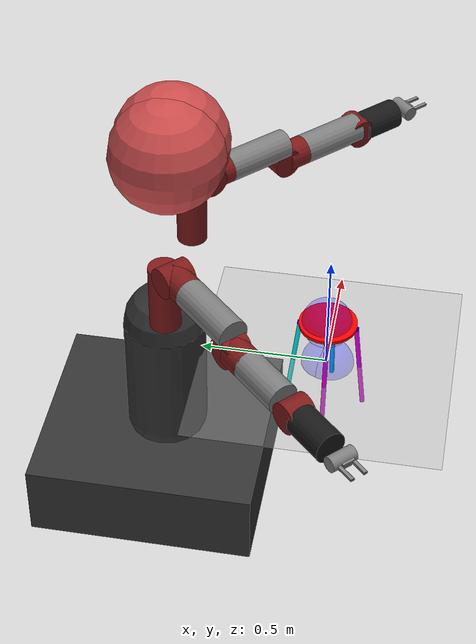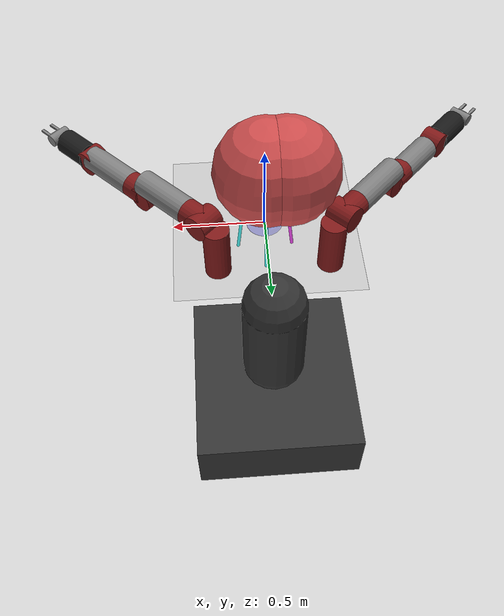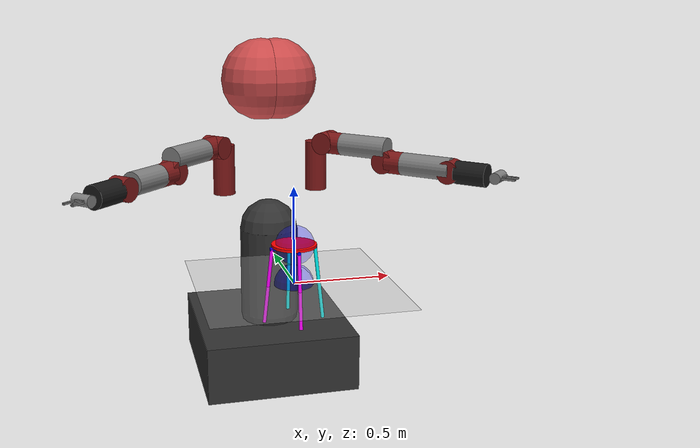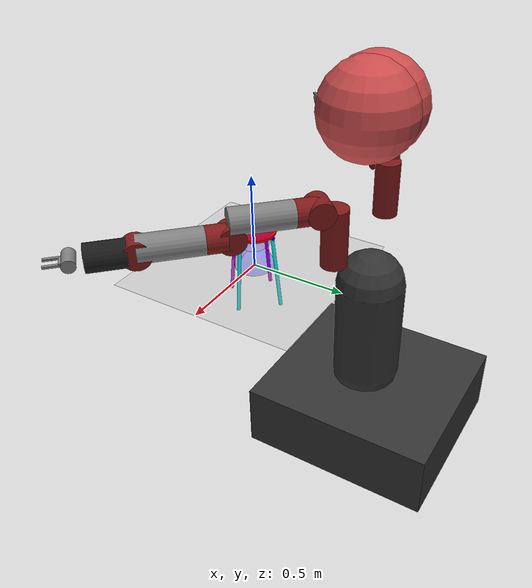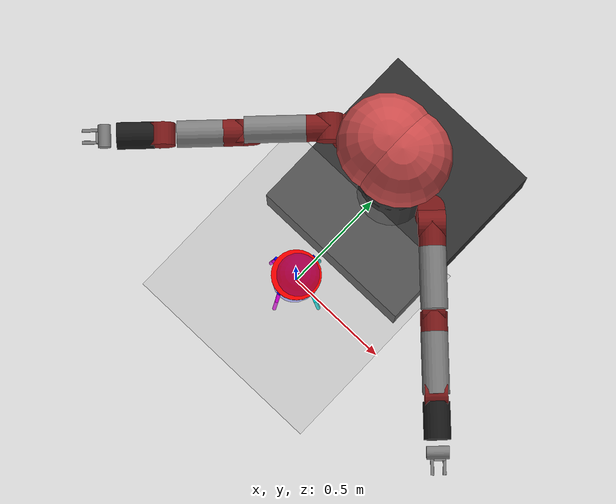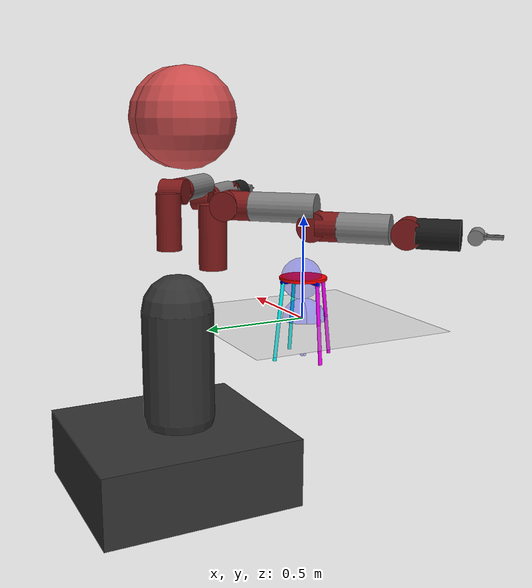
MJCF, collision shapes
<mujoco model="base">
  <compiler angle="radian" meshdir="meshes/" />
  <option cone="elliptic" impratio="20" />
  <size nconmax="5000" njmax="5000" />
  <visual>
      <map znear="0.001" />
  </visual>

  <asset>
  <texture builtin="flat" height="256" rgb1="1 1 1." rgb2=".2 .3 .4" type="skybox" width="256" />
        <texture builtin="checker" height="512" name="texplane" rgb1=".2 .3 .4" rgb2=".1 0.15 0.2" type="2d" width="512" />
        <material name="floorplane" reflectance="0.5" texrepeat="1 1" texture="texplane" texuniform="true" />
    <mesh file="/media/jinwoo/Disk/Research_linux/Workspace/Research/Compound_task/furniture-dev/furniture/env/models/assets/robots/baxter/meshes/torso/base_link.STL" name="base_link" />
    <mesh file="/media/jinwoo/Disk/Research_linux/Workspace/Research/Compound_task/furniture-dev/furniture/env/models/assets/robots/baxter/meshes/torso/base_link_collision.STL" name="base_link_collision" />
    <mesh file="/media/jinwoo/Disk/Research_linux/Workspace/Research/Compound_task/furniture-dev/furniture/env/models/assets/robots/baxter/meshes/base/PEDESTAL.STL" name="PEDESTAL" />
    <mesh file="/media/jinwoo/Disk/Research_linux/Workspace/Research/Compound_task/furniture-dev/furniture/env/models/assets/robots/baxter/meshes/base/pedestal_link_collision.STL" name="pedestal_link_collision" />
    <mesh file="/media/jinwoo/Disk/Research_linux/Workspace/Research/Compound_task/furniture-dev/furniture/env/models/assets/robots/baxter/meshes/head/H0.STL" name="H0" />
    <mesh file="/media/jinwoo/Disk/Research_linux/Workspace/Research/Compound_task/furniture-dev/furniture/env/models/assets/robots/baxter/meshes/head/H1.STL" name="H1" />
    <mesh file="/media/jinwoo/Disk/Research_linux/Workspace/Research/Compound_task/furniture-dev/furniture/env/models/assets/robots/baxter/meshes/upper_shoulder/S0.STL" name="S0" />
    <mesh file="/media/jinwoo/Disk/Research_linux/Workspace/Research/Compound_task/furniture-dev/furniture/env/models/assets/robots/baxter/meshes/lower_shoulder/S1.STL" name="S1" />
    <mesh file="/media/jinwoo/Disk/Research_linux/Workspace/Research/Compound_task/furniture-dev/furniture/env/models/assets/robots/baxter/meshes/upper_elbow/E0.STL" name="E0" />
    <mesh file="/media/jinwoo/Disk/Research_linux/Workspace/Research/Compound_task/furniture-dev/furniture/env/models/assets/robots/baxter/meshes/lower_elbow/E1.STL" name="E1" />
    <mesh file="/media/jinwoo/Disk/Research_linux/Workspace/Research/Compound_task/furniture-dev/furniture/env/models/assets/robots/baxter/meshes/upper_forearm/W0.STL" name="W0" />
    <mesh file="/media/jinwoo/Disk/Research_linux/Workspace/Research/Compound_task/furniture-dev/furniture/env/models/assets/robots/baxter/meshes/lower_forearm/W1.STL" name="W1" />
    <mesh file="/media/jinwoo/Disk/Research_linux/Workspace/Research/Compound_task/furniture-dev/furniture/env/models/assets/robots/baxter/meshes/wrist/W2.STL" name="W2" />
    <mesh file="/media/jinwoo/Disk/Research_linux/Workspace/Research/Compound_task/furniture-dev/furniture/env/models/assets/robots/baxter/meshes/electric_gripper/fingers/paddle_tip.STL" name="paddle_tip" />
  <mesh file="/media/jinwoo/Disk/Research_linux/Workspace/Research/Compound_task/furniture-dev/furniture/env/models/assets/grippers/meshes/two_finger_gripper/electric_gripper_base.STL" name="electric_gripper_base" />
        <mesh file="/media/jinwoo/Disk/Research_linux/Workspace/Research/Compound_task/furniture-dev/furniture/env/models/assets/grippers/meshes/two_finger_gripper/standard_narrow.STL" name="standard_narrow" />
        <mesh file="/media/jinwoo/Disk/Research_linux/Workspace/Research/Compound_task/furniture-dev/furniture/env/models/assets/grippers/meshes/two_finger_gripper/half_round_tip.STL" name="half_round_tip" />
    <mesh file="/media/jinwoo/Disk/Research_linux/Workspace/Research/Compound_task/furniture-dev/furniture/env/models/assets/objects/chair_agne_0007/leg1.stl" name="leg1" scale="0.0005 0.0005 0.0005" />
        <mesh file="/media/jinwoo/Disk/Research_linux/Workspace/Research/Compound_task/furniture-dev/furniture/env/models/assets/objects/chair_agne_0007/leg2.stl" name="leg2" scale="0.0005 0.0005 0.0005" />
        <mesh file="/media/jinwoo/Disk/Research_linux/Workspace/Research/Compound_task/furniture-dev/furniture/env/models/assets/objects/chair_agne_0007/seat.stl" name="seat" scale="0.0005 0.0005 0.0005" />
        <texture file="/media/jinwoo/Disk/Research_linux/Workspace/Research/Compound_task/furniture-dev/furniture/env/models/assets/objects/../textures/light-wood.png" name="tex-light-wood" type="2d" />
        <material name="light-wood" reflectance="0.5" texrepeat="20 20" texture="tex-light-wood" texuniform="true" />
    </asset>

  <actuator>
  <velocity ctrllimited="true" ctrlrange="-2 2" joint="right_s0" kv="60" />
    <velocity ctrllimited="true" ctrlrange="-2 2" joint="right_s1" kv="50" />
    <velocity ctrllimited="true" ctrlrange="-2 2" joint="right_e0" kv="20" />
    <velocity ctrllimited="true" ctrlrange="-2 2" joint="right_e1" kv="20" />
    <velocity ctrllimited="true" ctrlrange="-4 4" joint="right_w0" kv="5" />
    <velocity ctrllimited="true" ctrlrange="-4 4" joint="right_w1" kv="5" />
    <velocity ctrllimited="true" ctrlrange="-4 4" joint="right_w2" kv="5" />

    <velocity ctrllimited="true" ctrlrange="-2 2" joint="left_s0" kv="60" />
    <velocity ctrllimited="true" ctrlrange="-2 2" joint="left_s1" kv="50" />
    <velocity ctrllimited="true" ctrlrange="-2 2" joint="left_e0" kv="20" />
    <velocity ctrllimited="true" ctrlrange="-2 2" joint="left_e1" kv="20" />
    <velocity ctrllimited="true" ctrlrange="-4 4" joint="left_w0" kv="5" />
    <velocity ctrllimited="true" ctrlrange="-4 4" joint="left_w1" kv="5" />
    <velocity ctrllimited="true" ctrlrange="-4 4" joint="left_w2" kv="5" />

<position ctrllimited="true" ctrlrange="-0.0115 0.020833" forcelimited="true" forcerange="-20 20" joint="r_gripper_r_finger_joint" kp="10000" name="gripper_r_gripper_r_finger_joint" />
        <position ctrllimited="true" ctrlrange="-0.020833 0.0115" forcelimited="true" forcerange="-20 20" joint="r_gripper_l_finger_joint" kp="10000" name="gripper_r_gripper_l_finger_joint" />
    <position ctrllimited="true" ctrlrange="-0.0115 0.020833" forcelimited="true" forcerange="-20 20" joint="l_gripper_r_finger_joint" kp="10000" name="gripper_l_gripper_r_finger_joint" />
        <position ctrllimited="true" ctrlrange="-0.020833 0.0115" forcelimited="true" forcerange="-20 20" joint="l_gripper_l_finger_joint" kp="10000" name="gripper_l_gripper_l_finger_joint" />

    </actuator>

  <worldbody>
  <geom condim="3" friction="2.0 0.005 0.0001" name="floor" pos="0 0 0" rgba="0.7 0.7 0.7 1" size="0.5 0.5 0.0625" type="plane" />

        <light castshadow="true" diffuse=".8 .8 .8" dir=".5 -.3 -.8" directional="true" pos="0 0 2.0" specular="0.3 0.3 0.3" />

        <camera fovy="60" mode="fixed" name="frontview" pos="0 -1.2 0.9" quat="0.86 0.51 0. 0." />
        <camera mode="fixed" name="sideview" pos="-2.5 0. 0.5" quat="0.5468 0.4482 -0.4482 -0.5468" />
    <body name="base" pos="0.0 0.65 0.21300000000000008" quat="1 0 0 -1">
      <inertial diaginertia="0.001 0.001 0.001" mass="10" pos="0 0 0" />
      <body name="collision_head_link_1" pos="0.11 0 0.75">
        <inertial diaginertia="1e-008 1e-008 1e-008" mass="0.0001" pos="0 0 0" />
        <geom class="viz" margin="0.001" name="noviz_head_link_1_geom_1" pos="0 0 0" rgba="0.8 0.3 0.3 0.3" size="0.001" type="sphere" />
        <geom margin="0.001" name="noviz_head_link_1_geom_2" pos="-0.07 -0.04 0" rgba="0.8 0.3 0.3 0.3" size="0.22" type="sphere" />
      </body>
      <body name="collision_head_link_2" pos="0.11 0 0.75">
        <inertial diaginertia="1e-008 1e-008 1e-008" mass="0.0001" pos="0 0 0" />
        <geom margin="0.001" name="noviz_head_link_2_geom_1" pos="0 0 0" rgba="0.8 0.3 0.3 0.3" size="0.001" type="sphere" />
        <geom margin="0.001" name="noviz_head_link_2_geom_2" pos="-0.07 0.04 0" rgba="0.8 0.3 0.3 0.3" size="0.22" type="sphere" />
      </body>
      <body name="torso" pos="0 0 0">
        <inertial diaginertia="1.87139 1.66268 0.779991" mass="35.3365" pos="0 0 0" quat="0.997433 0.00167178 0.0715546 -0.00209003" />
        <geom class="viz" margin="0.001" mesh="base_link" name="torso_base_link_mesh" />
        <geom class="viz" margin="0.001" mesh="base_link_collision" name="torso_collider" type="mesh" />
        <body name="pedestal" pos="0 0 0">
          <inertial diaginertia="6.0869 5.81635 4.20915" mass="60.864" pos="0 0 0" quat="0.659267 -0.259505 -0.260945 0.655692" />
          <geom class="viz" margin="0.001" mesh="PEDESTAL" name="pedestal_mesh" rgba="0.2 0.2 0.2 1" />
          <geom margin="0.001" name="_pedestal_collider_1" pos="-.04 0 -.8" rgba="0.2 0.2 0.2 1" size=".46 .425 .16" type="box" />
          <geom margin="0.001" name="pedestal_collider_2" pos="0 0 -.35" rgba="0.2 0.2 0.2 1" size=".165 .25" type="capsule" />
        </body>
        <body name="head" pos="0.06 0 0.686">
          <inertial diaginertia="0.00474065 0.00461087 0.00199949" mass="0.547767" pos="0 0 0" quat="0.339345 0.850736 -0.347392 0.201027" />
          <joint armature=".01" axis="0 0 1" damping="0" limited="true" name="head_pan" pos="0 0 0" range="-1.5708 1.5708" type="hinge" />
          <geom class="viz" margin="0.001" mesh="H0" name="head_mesh_h0" rgba="0.2 0.2 0.2 1" />
          <body name="screen" pos="0.1227 0 0" quat="0.453099 0.542864 0.542864 0.453099">
            <inertial diaginertia="0.0040484 0.00275826 0.00150834" mass="0.440171" pos="0 0 0" quat="0.995785 0.0113501 -0.000390852 0.0910132" />
            <geom class="viz" euler="0 -1.57 0" margin="0.001" mesh="H1" name="screen_mesh_1" pos="0 0 -.03" rgba="0.5 0.1 0.1 1" />
            <geom class="viz" margin="0.001" name="display" pos="0 -0.016 0" quat="0.991445 0.130526 0 0" rgba=".9 .9 .9 1" size="0.109 0.08 0.002" type="box" />
          </body>
        </body>
        <body name="right_arm_mount" pos="0.024645 -0.219645 0.118588" quat="0.923879 0 0 -0.382684">
          <inertial diaginertia="1e-008 1e-008 1e-008" mass="0.0001" pos="0 0 0" />
          <body name="right_upper_shoulder" pos="0.055695 0 0.011038">
            <inertial diaginertia="0.0498344 0.0377511 0.0331351" mass="5.70044" pos="0.01783 0.00086 0.19127" quat="0.975667 0.0673303 -0.206117 0.0325173" />
            <joint armature=".01" axis="0 0 1" damping="0" limited="true" name="right_s0" pos="0 0 0" range="-1.70168 1.70168" type="hinge" />
            <geom class="viz" margin="0.001" mesh="S0" name="right_upper_shoulder_mesh" rgba="0.5 0.1 0.1 1" />
            <geom margin="0.001" name="right_upper_shoulder_collider" pos="0 0 0.1361" rgba="0.5 0.1 0.1 1" size="0.06 0.1361" type="cylinder" />
            <body name="right_lower_shoulder" pos="0.069 0 0.27035" quat="0.707107 -0.707107 0 0">
              <inertial diaginertia="0.0278991 0.0212327 0.0112937" mass="3.22698" pos="0.06845 0.00269 -0.00529" quat="0.447487 0.536948 0.56425 0.439391" />
              <joint armature=".01" axis="0 0 1" damping="0" limited="true" name="right_s1" pos="0 0 0" range="-2.147 1.047" type="hinge" />
              <geom class="viz" margin="0.001" mesh="S1" name="right_lower_shoulder_mesh" rgba="0.5 0.1 0.1 1" />
              <geom margin="0.001" name="right_lower_shoulder" pos="0 0 0" rgba="0.5 0.1 0.1 1" size="0.06 0.06" type="cylinder" />
              <body name="right_upper_elbow" pos="0.102 0 0" quat="0.5 0.5 0.5 0.5">
                <inertial diaginertia="0.0287695 0.0273625 0.011409" mass="4.31272" pos="-0.00276 0.00132 0.18086" quat="0.838995 -0.0423128 -0.121287 0.52876" />
                <joint armature=".01" axis="0 0 1" damping="0" limited="true" name="right_e0" pos="0 0 0" range="-3.05418 3.05418" type="hinge" />
                <geom class="viz" margin="0.001" mesh="E0" name="right_upper_elbow_mesh" rgba="0.5 0.1 0.1 1" />
                <geom margin="0.001" name="right_upper_elbow_collider_1" pos="0 0 -0.0535" rgba="0.5 0.1 0.1 1" size="0.06 0.0535" type="cylinder" />
                <geom class="viz" margin="0.001" name="right_upper_elbow_visual" pos="0 0 0.1365" size="0.06 0.1365" type="cylinder" />
                <body name="right_lower_elbow" pos="0.069 0 0.26242" quat="0.5 -0.5 -0.5 -0.5">
                  <inertial diaginertia="0.0132096 0.00950002 0.00685697" mass="2.07206" pos="0.02611 0.00159 -0.01117" quat="0.440433 0.577149 0.562777 0.395221" />
                  <joint armature=".01" axis="0 0 1" damping="0" limited="true" name="right_e1" pos="0 0 0" range="-0.05 2.618" type="hinge" />
                  <geom class="viz" margin="0.001" mesh="E1" name="right_lower_elbox_mesh" rgba="0.5 0.1 0.1 1" />
                  <geom margin="0.001" name="right_lower_elbow_collider" pos="0 0 0" rgba="0.5 0.1 0.1 1" size="0.06 0.05" type="cylinder" />
                  <body name="right_upper_forearm" pos="0.10359 0 0" quat="0.5 0.5 0.5 0.5">
                    <inertial diaginertia="0.016916 0.0165511 0.00371123" mass="2.24665" pos="-0.00168 0.0046 0.13952" quat="0.892709 -0.0256256 0.00446984 0.449882" />
                    <joint armature=".01" axis="0 0 1" damping="0" limited="true" name="right_w0" pos="0 0 0" range="-3.059 3.059" type="hinge" />
                    <geom class="viz" margin="0.001" mesh="W0" name="right_upper_forearm_mesh" rgba="0.5 0.1 0.1 1" />
                    <geom margin="0.001" name="right_upper_forearm_collider" pos="0 0 -0.044" rgba="0.5 0.1 0.1 1" size="0.06 0.044" type="cylinder" />
                    <geom class="viz" margin="0.001" name="right_upper_forearm_visual" pos="0 0 0.1" size="0.06 0.1036" type="cylinder" />
                    <body name="right_lower_forearm" pos="0.01 0 0.2707" quat="0.5 -0.5 -0.5 -0.5">
                      <inertial diaginertia="0.00708828 0.00552689 0.00379383" mass="1.60979" pos="0.06041 0.00697 0.006" quat="0.456911 0.468526 0.475683 0.587743" />
                      <joint armature=".01" axis="0 0 1" damping="0" limited="true" name="right_w1" pos="0 0 0" range="-1.5708 2.094" type="hinge" />
                      <geom class="viz" margin="0.001" mesh="W1" name="right_lower_forearm_mesh" rgba="0.5 0.1 0.1 1" />
                      <geom margin="0.001" name="right_lower_forearm_visual" pos="0 0 0" rgba="0.5 0.1 0.1 1" size="0.06 0.05" type="cylinder" />
                      <body name="right_wrist" pos="0.115975 0 0" quat="0.5 0.5 0.5 0.5">
                        <inertial diaginertia="0.0003082 0.000269928 0.000251035" mass="0.35093" pos="0.00198 0.00125 0.01855" quat="0.0594843 0.68926 -0.16016 0.704082" />
                        <joint armature=".01" axis="0 0 1" damping="0" limited="true" name="right_w2" pos="0 0 0" range="-3.059 3.059" type="hinge" />
                        <geom class="viz" margin="0.001" mesh="W2" name="right_wrist_mesh" rgba="0.1 0.1 0.1 1" />
                        <geom margin="0.001" name="right_wrist_cylinder" pos="0 0 0" rgba="0.1 0.1 0.1 1" size="0.06 0.0825" type="cylinder" />
                        <body name="right_hand" pos="0 0 0.11355">

                        <inertial diaginertia="1e-08 1e-08 1e-08" mass="1e-08" pos="1e-08 1e-08 1e-08" quat="0.820473 0.339851 -0.17592 0.424708" />
        <geom size="1e-08 5e-09" type="cylinder" />
        <body name="right_gripper_base" pos="0 0 0.025">
            <inertial diaginertia="3e-08 2e-08 2e-08" mass="0.3" pos="0 0 0" quat="-0.5 0.5 0.5 0.5" />
            <geom conaffinity="0" contype="0" group="1" mesh="electric_gripper_base" name="right_gripper_base_geom" quat="0 0 0.707107 0.707107" type="mesh" />
            <geom quat="0 0 0.707107 0.707107" size="0.029 0.05" type="cylinder" />
            <body name="right_gripper" pos="0 0 0.095">
                <inertial diaginertia="0 0 0" mass="0.0001" pos="0 0 0" />

                <site group="1" name="grip_site" pos="0 0 0" rgba="0 0 0 0" size="0.01 0.01 0.01" type="sphere" />

                <site group="1" name="grip_site_cylinder" pos="0 0 0" rgba="0 0 0 0" size="0.005 10" type="cylinder" />

                <camera fovy="75" mode="fixed" name="eye_in_hand" pos="0 0 0" quat="0 -1 1 0" />
            </body>

            <body name="r_gripper_l_finger" pos="0 0.01 0.02">
                <inertial diaginertia="0.01 0.01 0.01" mass="0.02" pos="0 0 0" quat="0 0 0 -1" />
                <joint axis="0 1 0" damping="100" limited="true" name="r_gripper_l_finger_joint" pos="0 0 0" range="-0.0115 0.020833" type="slide" />
                <geom conaffinity="0" contype="0" group="1" mesh="standard_narrow" name="r_gripper_l_finger" quat="0 0 0 -1" type="mesh" />
                <geom conaffinity="1" contype="0" friction="0 0 0" name="l_finger_g0" pos="0 0.01725 0.04" quat="0 0 0 -1" size="0.005 0.00675 0.0375" type="box" />
                <geom conaffinity="1" contype="0" friction="0 0 0" name="l_finger_g1" pos="-0.005 -0.003 0.0083" quat="0 0 0 -1" size="0.005 0.025 0.0085" type="box" />

                <body name="r_gripper_l_finger_tip" pos="0 0.01725 0.075">
                    <inertial diaginertia="0.01 0.01 0.01" mass="0.01" pos="0 0 0" quat="0 0 0 1" />
                    <geom conaffinity="0" contype="0" group="1" mesh="half_round_tip" name="r_gripper_l_finger_tip_geom" quat="0 0 0 1" type="mesh" />

                <geom conaffinity="1" contype="0" friction="1 0.5 0.5" name="l_fingertip_g0" pos="0 -0.0045 -0.015" quat="0 0 0 1" size="0.004 0.004 0.0185" type="box" />

                </body>
            </body>
            <body name="r_gripper_r_finger" pos="0 -0.01 0.02">
                <inertial diaginertia="0.01 0.01 0.01" mass="0.02" pos="0 0 0" />
                <joint axis="0 1 0" damping="100" limited="true" name="r_gripper_r_finger_joint" pos="0 0 0" range="-0.020833 0.0115" type="slide" />
                <geom conaffinity="0" contype="0" group="1" mesh="standard_narrow" name="r_gripper_r_finger" type="mesh" />
                <geom conaffinity="1" contype="0" friction="0 0 0" name="r_finger_g0" pos="0 -0.01725 0.04" size="0.005 0.00675 0.0375" type="box" />
                <geom conaffinity="1" contype="0" friction="0 0 0" name="r_finger_g1" pos="0.005 0.003 0.0083" size="0.005 0.025 0.0085" type="box" />
                <body name="r_gripper_r_finger_tip" pos="0 -0.01725 0.075">
                    <inertial diaginertia="0.01 0.01 0.01" mass="0.01" pos="0 0 0" />
                    <geom conaffinity="0" contype="0" group="1" mesh="half_round_tip" name="r_gripper_r_finger_tip_geom" type="mesh" />
                    <geom conaffinity="1" contype="0" friction="1 0.5 0.5" name="r_fingertip_g0" pos="0 0.0045 -0.015" size="0.004 0.004 0.0185" type="box" />
                </body>
            </body>
        </body>
    </body>
                      </body>
                    </body>
                  </body>
                </body>
              </body>
            </body>
          </body>
        </body>
        <body name="left_arm_mount" pos="0.024645 0.219645 0.118588" quat="0.923879 0 0 0.382684">
          <inertial diaginertia="1e-008 1e-008 1e-008" mass="0.0001" pos="0 0 0" />
          <body name="left_upper_shoulder" pos="0.055695 0 0.011038">
            <inertial diaginertia="0.0498344 0.0377511 0.0331351" mass="5.70044" pos="0.01783 0.00086 0.19127" quat="0.975667 0.0673303 -0.206117 0.0325173" />
            <joint armature=".01" axis="0 0 1" damping="0" limited="true" name="left_s0" pos="0 0 0" range="-1.70168 1.70168" type="hinge" />
            <geom class="viz" margin="0.001" mesh="S0" name="left_upper_shoulder_mesh" rgba="0.5 0.1 0.1 1" />
            <geom margin="0.001" name="left_upper_shoulder_cylinder" pos="0 0 0.1361" rgba="0.5 0.1 0.1 1" size="0.06 0.1361" type="cylinder" />
            <body name="left_lower_shoulder" pos="0.069 0 0.27035" quat="0.707107 -0.707107 0 0">
              <inertial diaginertia="0.0278991 0.0212327 0.0112937" mass="3.22698" pos="0.06845 0.00269 -0.00529" quat="0.447487 0.536948 0.56425 0.439391" />
              <joint armature=".01" axis="0 0 1" damping="0" limited="true" name="left_s1" pos="0 0 0" range="-2.147 1.047" type="hinge" />
              <geom class="viz" margin="0.001" mesh="S1" name="left_lower_shoulder_mesh" rgba="0.5 0.1 0.1 1" />
              <geom margin="0.001" name="left_lower_shoulder_cylinder" pos="0 0 0" rgba="0.5 0.1 0.1 1" size="0.06 0.06" type="cylinder" />
              <body name="left_upper_elbow" pos="0.102 0 0" quat="0.5 0.5 0.5 0.5">
                <inertial diaginertia="0.0287695 0.0273625 0.011409" mass="4.31272" pos="-0.00276 0.00132 0.18086" quat="0.838995 -0.0423128 -0.121287 0.52876" />
                <joint armature=".01" axis="0 0 1" damping="0" limited="true" name="left_e0" pos="0 0 0" range="-3.05418 3.05418" type="hinge" />
                <geom class="viz" margin="0.001" mesh="E0" name="left_upper_elbow_mesh" rgba="0.5 0.1 0.1 1" />
                <geom margin="0.001" name="left_upper_elbow_cylinder" pos="0 0 -0.0535" rgba="0.5 0.1 0.1 1" size="0.06 0.0535" type="cylinder" />
                <geom class="viz" margin="0.001" name="left_upper_elbow_visual" pos="0 0 0.1365" size="0.06 0.1365" type="cylinder" />
                <body name="left_lower_elbow" pos="0.069 0 0.26242" quat="0.5 -0.5 -0.5 -0.5">
                  <inertial diaginertia="0.0132096 0.00950002 0.00685697" mass="2.07206" pos="0.02611 0.00159 -0.01117" quat="0.440433 0.577149 0.562777 0.395221" />
                  <joint armature=".01" axis="0 0 1" damping="0" limited="true" name="left_e1" pos="0 0 0" range="-0.05 2.618" type="hinge" />
                  <geom class="viz" margin="0.001" mesh="E1" name="left_lower_elbow_mesh" rgba="0.5 0.1 0.1 1" />
                  <geom margin="0.001" name="left_lower_elbow_cylinder" pos="0 0 0" rgba="0.5 0.1 0.1 1" size="0.06 0.05" type="cylinder" />
                  <body name="left_upper_forearm" pos="0.10359 0 0" quat="0.5 0.5 0.5 0.5">
                    <inertial diaginertia="0.016916 0.0165511 0.00371123" mass="2.24665" pos="-0.00168 0.0046 0.13952" quat="0.892709 -0.0256256 0.00446984 0.449882" />
                    <joint armature=".01" axis="0 0 1" damping="0" limited="true" name="left_w0" pos="0 0 0" range="-3.059 3.059" type="hinge" />
                    <geom class="viz" margin="0.001" mesh="W0" name="left_upper_forearm_mesh" rgba="0.5 0.1 0.1 1" />
                    <geom margin="0.001" name="left_upper_forearm_cylinder" pos="0 0 -0.044" rgba="0.5 0.1 0.1 1" size="0.06 0.044" type="cylinder" />
                    <geom class="viz" margin="0.001" name="left_upper_forearm_visual" pos="0 0 0.136" size="0.06 0.136" type="cylinder" />
                    <body name="left_lower_forearm" pos="0.01 0 0.2707" quat="0.5 -0.5 -0.5 -0.5">
                      <inertial diaginertia="0.00708828 0.00552689 0.00379383" mass="1.60979" pos="0.06041 0.00697 0.006" quat="0.456911 0.468526 0.475683 0.587743" />
                      <joint armature=".01" axis="0 0 1" damping="0" limited="true" name="left_w1" pos="0 0 0" range="-1.5708 2.094" type="hinge" />
                      <geom class="viz" margin="0.001" mesh="W1" name="left_lower_forearm_mesh" rgba="0.5 0.1 0.1 1" />
                      <geom margin="0.001" name="left_lower_forearm_cylinder" pos="0 0 0" rgba="0.5 0.1 0.1 1" size="0.06 0.05" type="cylinder" />
                      <body name="left_wrist" pos="0.115975 0 0" quat="0.5 0.5 0.5 0.5">
                        <inertial diaginertia="0.0003082 0.000269928 0.000251035" mass="0.35093" pos="0.00198 0.00125 0.01855" quat="0.0594843 0.68926 -0.16016 0.704082" />
                        <joint armature=".01" axis="0 0 1" damping="0" limited="true" name="left_w2" pos="0 0 0" range="-3.059 3.059" type="hinge" />
                        <geom class="viz" margin="0.001" mesh="W2" name="left_wrist_mesh" rgba="0.1 0.1 0.1 1" />
                        <geom margin="0.001" name="left_wrist_cylinder" pos="0 0 0" rgba="0.1 0.1 0.1 1" size="0.06 0.0825" type="cylinder" />
                        <body name="left_hand" pos="0 0 0.11355">

                        <inertial diaginertia="1e-08 1e-08 1e-08" mass="1e-08" pos="1e-08 1e-08 1e-08" quat="0.820473 0.339851 -0.17592 0.424708" />
        <geom size="1e-08 5e-09" type="cylinder" />
        <body name="left_gripper_base" pos="0 0 0.025">
            <inertial diaginertia="3e-08 2e-08 2e-08" mass="0.3" pos="0 0 0" quat="-0.5 0.5 0.5 0.5" />
            <geom conaffinity="0" contype="0" group="1" mesh="electric_gripper_base" quat="0 0 0.707107 0.707107" type="mesh" />
            <geom quat="0 0 0.707107 0.707107" size="0.029 0.05" type="cylinder" />
            <body name="left_gripper" pos="0 0 0.095">
                <inertial diaginertia="0 0 0" mass="0.0001" pos="0 0 0" />

                <site group="1" name="l_g_grip_site" pos="0 0 0" rgba="0 0 0 0" size="0.01 0.01 0.01" type="sphere" />

                <site group="1" name="l_g_grip_site_cylinder" pos="0 0 0" rgba="0 0 0 0" size="0.005 10" type="cylinder" />
            </body>

            <body name="l_gripper_l_finger" pos="0 0.01 0.02">
                <inertial diaginertia="0.01 0.01 0.01" mass="0.02" pos="0 0 0" quat="0 0 0 -1" />
                <joint axis="0 1 0" damping="100" limited="true" name="l_gripper_l_finger_joint" pos="0 0 0" range="-0.0115 0.020833" type="slide" />
                <geom conaffinity="0" contype="0" group="1" mesh="standard_narrow" name="l_gripper_l_finger" quat="0 0 0 -1" type="mesh" />

                <geom conaffinity="1" contype="0" friction="0 0 0" name="l_g_l_finger_g0" pos="0 0.01725 0.04" quat="0 0 0 -1" size="0.005 0.00675 0.0375" type="box" />
                <geom conaffinity="1" contype="0" friction="0 0 0" name="l_g_l_finger_g1" pos="-0.005 -0.003 0.0083" quat="0 0 0 -1" size="0.005 0.025 0.0085" type="box" />
                <body name="l_gripper_l_finger_tip" pos="0 0.01725 0.075">
                    <inertial diaginertia="0.01 0.01 0.01" mass="0.01" pos="0 0 0" quat="0 0 0 1" />
                    <geom conaffinity="0" contype="0" group="1" mesh="half_round_tip" quat="0 0 0 1" type="mesh" />
                    <geom conaffinity="1" contype="0" friction="0 0 0" name="l_g_l_fingertip_g0" pos="0 -0.0045 -0.015" quat="0 0 0 1" size="0.004 0.004 0.0185" type="box" />
                </body>
            </body>

            <body name="l_gripper_r_finger" pos="0 -0.01 0.02">
                <inertial diaginertia="0.01 0.01 0.01" mass="0.02" pos="0 0 0" />
                <joint axis="0 1 0" damping="100" limited="true" name="l_gripper_r_finger_joint" pos="0 0 0" range="-0.020833 0.0115" type="slide" />
                <geom conaffinity="0" contype="0" group="1" mesh="standard_narrow" name="l_gripper_r_finger" type="mesh" />

                <geom conaffinity="1" contype="0" friction="0 0 0" name="l_g_r_finger_g0" pos="0 -0.01725 0.04" size="0.005 0.00675 0.0375" type="box" />
                <geom conaffinity="1" contype="0" friction="0 0 0" name="l_g_r_finger_g1" pos="0.005 0.003 0.0083" size="0.005 0.025 0.0085" type="box" />
                <body name="l_gripper_r_finger_tip" pos="0 -0.01725 0.075">
                    <inertial diaginertia="0.01 0.01 0.01" mass="0.01" pos="0 0 0" />
                    <geom conaffinity="0" contype="0" group="1" mesh="half_round_tip" type="mesh" />
                    <geom conaffinity="1" contype="0" friction="0 0 0" name="l_g_r_fingertip_g0" pos="0 0.0045 -0.015" size="0.004 0.004 0.0185" type="box" />
                </body>
            </body>
        </body>
    </body>
                      </body>
                    </body>
                  </body>
                </body>
              </body>
            </body>
          </body>
        </body>
      </body>
    </body>
  <body name="1_leg1" pos="0 0 0" quat="1 0 0 0">
            <geom conaffinity="0" contype="0" density="0" friction="1 0.5 0.5" material="light-wood" mesh="leg1" name="1_leg1-0" pos="0 0 0" rgba="0.82 0.71 0.55 1" type="mesh" />
            <geom density="100" euler="1.57 0 0" friction="1 0.5 0.5" name="noviz_collision_1_leg1_1" pos="0 0 0.19" rgba="0 0 1 1" size="0.009 0.12" solref="0.001 1" type="cylinder" />
            <geom density="100" euler="0.11 0 0" friction="1 0.5 0.5" name="noviz_collision_1_leg1_2" pos="0 0.1315 0" rgba="0 1 1 1" size="0.009 0.195" solref="0.001 1" type="cylinder" />
            <geom density="100" euler="-0.11 0 0" friction="1 0.5 0.5" name="noviz_collision_1_leg1_3" pos="0 -0.1315 0" rgba="1 0 1 1" size="0.009 0.195" solref="0.001 1" type="cylinder" />
            <site name="leg1-leg2,0,180,conn_site" pos="0.0 0.0 0.18" rgba="0 1 0 0.3" size="0.01" />
            <site name="leg1-seat,conn_site" pos="0.0 0.0 0.2" rgba="1 0 0 0.3" size="0.01" />
            <site name="1_leg1_bottom_site" pos="0 0 -0.18" rgba="0 0 1 0.3" size="0.01" />
            <site name="1_leg1_top_site" pos="0.0 0.0 0.2" rgba="0 0 1 0.3" size="0.01" />
            <site name="1_leg1_horizontal_radius_site" pos="0 0 0" rgba="0 0 1 0.3" size="0.1" />
        <site name="1_leg1" pos="0 0 0" rgba="1 0 0 0" size="0.002 0.002 0.002" type="sphere" /><joint damping="0.0001" name="1_leg1" type="free" /></body>
        <body name="2_leg2" pos="-0.005 -0.01 0" quat="1 0 0 0">
            <geom conaffinity="0" contype="0" density="0" friction="1 0.5 0.5" material="light-wood" mesh="leg2" name="2_leg2-0" pos="0 0 0" rgba="0.82 0.71 0.55 1" type="mesh" />
            <geom density="100" euler="0 1.57 0" friction="1 0.5 0.5" name="noviz_collision_2_leg2_1" pos="0 0 0.19" rgba="0 0 1 1" size="0.009 0.12" solref="0.001 1" type="cylinder" />
            <geom density="100" euler="0 -0.11 0" friction="1 0.5 0.5" name="noviz_collision_2_leg2_2" pos="0.1315 0 0" rgba="0 1 1 1" size="0.009 0.195" solref="0.001 1" type="cylinder" />
            <geom density="100" euler="0 0.11 0" friction="1 0.5 0.5" name="noviz_collision_2_leg2_3" pos="-0.1315 0 0" rgba="1 0 1 1" size="0.009 0.195" solref="0.001 1" type="cylinder" />
            <site name="leg2-leg1,0,180,conn_site" pos="0.0 0.0 0.2" rgba="0 1 0 0.3" size="0.01" />
            <site name="2_leg2_bottom_site" pos="0 0 -0.18" rgba="0 0 1 0.3" size="0.01" />
            <site name="2_leg2_top_site" pos="0.0 0.0 0.2" rgba="0 0 1 0.3" size="0.01" />
            <site name="2_leg2_horizontal_radius_site" pos="0 0 0" rgba="0 0 1 0.3" size="0.1" />
        <site name="2_leg2" pos="0 0 0" rgba="1 0 0 0" size="0.002 0.002 0.002" type="sphere" /><joint damping="0.0001" name="2_leg2" type="free" /></body>

        <body name="3_seat" pos="0 0 0.2">
            <geom conaffinity="0" contype="0" density="0" friction="1 0.5 0.5" material="light-wood" mesh="seat" name="3_seat-0" pos="0 0 0" rgba="0.82 0.71 0.55 1" type="mesh" />
            <geom density="100" euler="0 0 0" friction="1 0.5 0.5" name="noviz_collision_3_seat" pos="0 0 0.002" rgba="1 0 0 1" size="0.115 0.007" solref="0.001 1" type="cylinder" />
            <site name="seat-leg1,conn_site" pos="0.0 0.0 -0.006" rgba="1 0 0 0.3" size="0.01" />
            <site name="3_seat_bottom_site" pos="0.0 0.0 -0.006" rgba="0 0 1 0.3" size="0.003" />
            <site name="3_seat_top_site" pos="0.0 0.0 0.01" rgba="0 0 1 0.3" size="0.003" />
            <site name="3_seat_horizontal_radius_site" pos="0.006 0.006 0.0" rgba="0 0 1 0.3" size="0.1" />
        <site name="3_seat" pos="0 0 0" rgba="1 0 0 0" size="0.002 0.002 0.002" type="sphere" /><joint damping="0.0001" name="3_seat" type="free" /></body>
    </worldbody>

  <equality>
  <weld active="false" body1="2_leg2" body2="1_leg1" solimp="1 1 0.5" solref="0.01 0.3" />
        <weld active="false" body1="1_leg1" body2="3_seat" solimp="1 1 0.5" solref="0.01 0.3" />
    </equality>
<contact><exclude body1="right_upper_shoulder" body2="torso" />
    <exclude body1="right_upper_shoulder" body2="right_upper_elbow" />
    <exclude body1="right_lower_shoulder" body2="torso" />
    <exclude body1="left_upper_shoulder" body2="torso" />
    <exclude body1="left_upper_shoulder" body2="left_upper_elbow" />
    <exclude body1="left_lower_shoulder" body2="torso" />
    <exclude body1="collision_head_link_1" body2="torso" />
    <exclude body1="collision_head_link_2" body2="torso" />
  </contact><default><default class="viz">
      <geom conaffinity="0" contype="0" group="1" margin="0.001" type="mesh" />
    </default>
  </default></mujoco>
